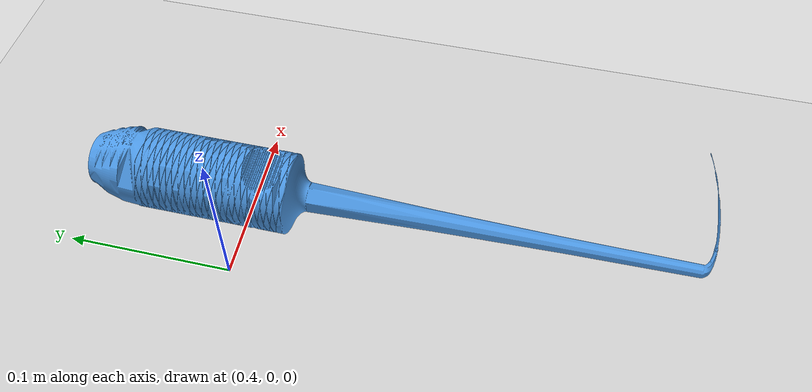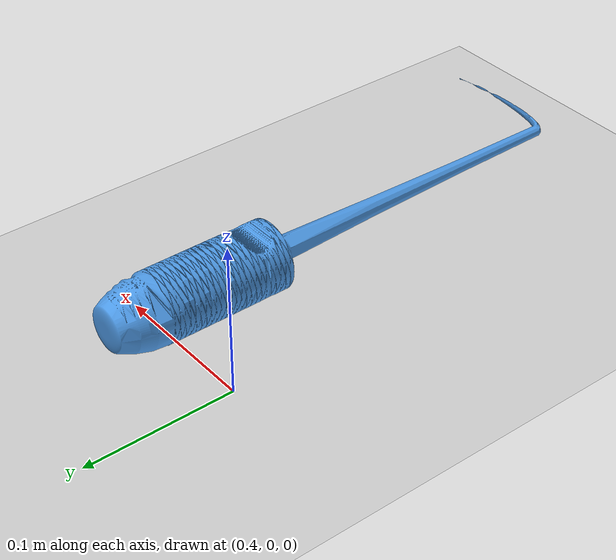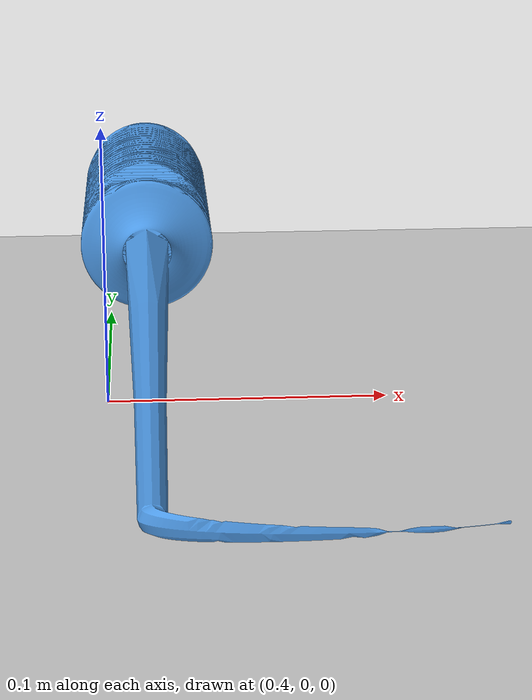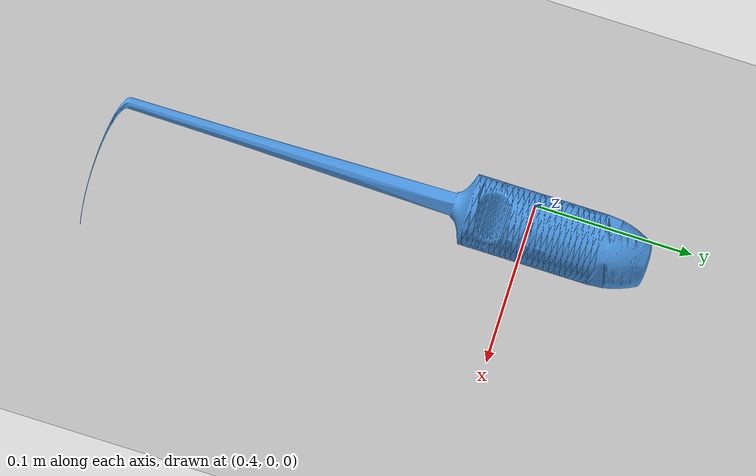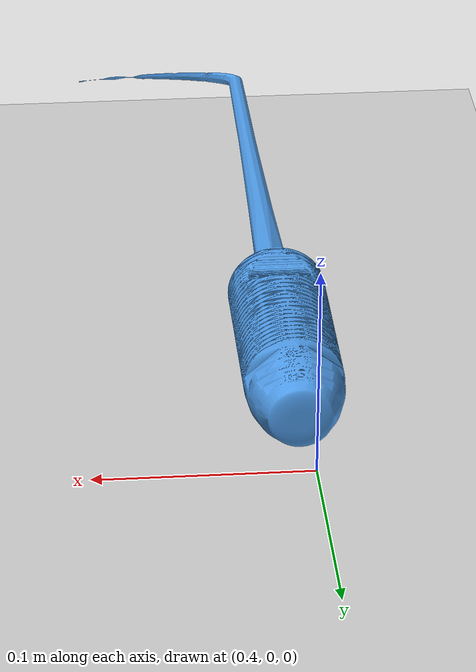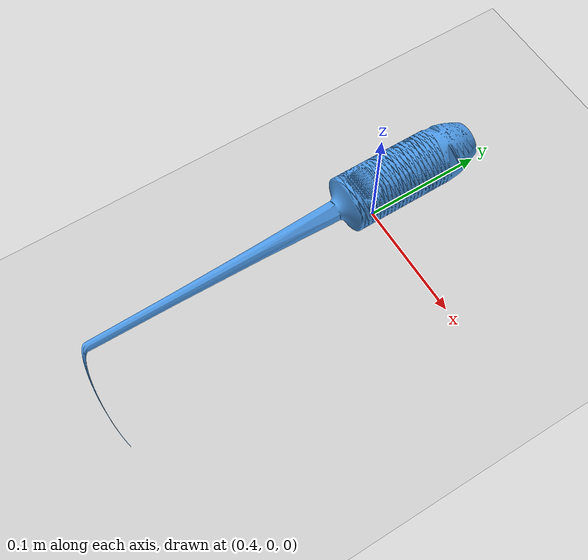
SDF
<?xml version="1.0" ?>
<sdf version="1.6">
  <world name="empty">
    <physics name="1ms" type="bullet-featherstone">
      <max_step_size>0.001</max_step_size>
      <real_time_factor>1.0</real_time_factor>
    </physics>
    <plugin
      filename="gz-sim-physics-system"
      name="gz::sim::systems::Physics">
    </plugin>
    <plugin
      filename="gz-sim-user-commands-system"
      name="gz::sim::systems::UserCommands">
    </plugin>
    <plugin
      filename="gz-sim-scene-broadcaster-system"
      name="gz::sim::systems::SceneBroadcaster">
    </plugin>
    <plugin
      filename="gz-sim-contact-system"
      name="gz::sim::systems::Contact">
    </plugin>

    <light type="directional" name="sun">
      <cast_shadows>true</cast_shadows>
      <pose>0 0 10 0 0 0</pose>
      <diffuse>0.8 0.8 0.8 1</diffuse>
      <specular>0.2 0.2 0.2 1</specular>
      <attenuation>
        <range>1000</range>
        <constant>0.9</constant>
        <linear>0.01</linear>
        <quadratic>0.001</quadratic>
      </attenuation>
      <direction>-0.5 0.1 -0.9</direction>
    </light>

    <model name="ground_plane">
      <static>true</static>
      <link name="link">
        <collision name="collision">
          <geometry>
            <plane>
              <normal>0 0 1</normal>
              <size>100 100</size>
            </plane>
          </geometry>
        </collision>
        <visual name="visual">
          <geometry>
            <plane>
              <normal>0 0 1</normal>
              <size>100 100</size>
            </plane>
          </geometry>
          <material>
            <ambient>0.8 0.8 0.8 1</ambient>
            <diffuse>0.8 0.8 0.8 1</diffuse>
            <specular>0.8 0.8 0.8 1</specular>
          </material>
        </visual>
      </link>
    </model>

    <!-- Hook model using STL file -->
<model name="hook">
  <pose>0.415 0 0.05 1.5708 0 0</pose>
  <link name="link">
    <!-- Box collision for better gripping -->
    <collision name="collision">
      <geometry>
        <box>
          <size>0.02 0.02 0.2</size>
        </box>
      </geometry>
      <surface>
        <friction>
          <ode>
            <mu>2.0</mu>
            <mu2>2.0</mu2>
            <slip1>0.0</slip1>
            <slip2>0.0</slip2>
          </ode>
        </friction>
        <contact>
          <ode>
            <kp>1000000.0</kp>
            <kd>100.0</kd>
            <max_vel>0.01</max_vel>
            <min_depth>0.001</min_depth>
          </ode>
        </contact>
      </surface>
    </collision>

    <visual name="visual">
      <pose>0 0.02 -0.07 0 0 0</pose>
      <geometry>
        <mesh>
          <uri>hook.stl</uri>
          <scale>0.0045 0.0045 0.001</scale>
        </mesh>
      </geometry>
      <material>
        <ambient>0.3 0.6 0.9 1</ambient>
        <diffuse>0.3 0.6 0.9 1</diffuse>
        <specular>0.2 0.2 0.2 1</specular>
      </material>
    </visual>

    <!-- Box inertial properties -->
    <inertial>
      <mass>1.0</mass>
      <inertia>
        <ixx>0.03407</ixx>
        <ixy>0</ixy>
        <ixz>0</ixz>
        <iyy>0.03407</iyy>
        <iyz>0</iyz>
        <izz>0.00067</izz>
      </inertia>
    </inertial>
  </link>
</model>
  </world>
</sdf>
